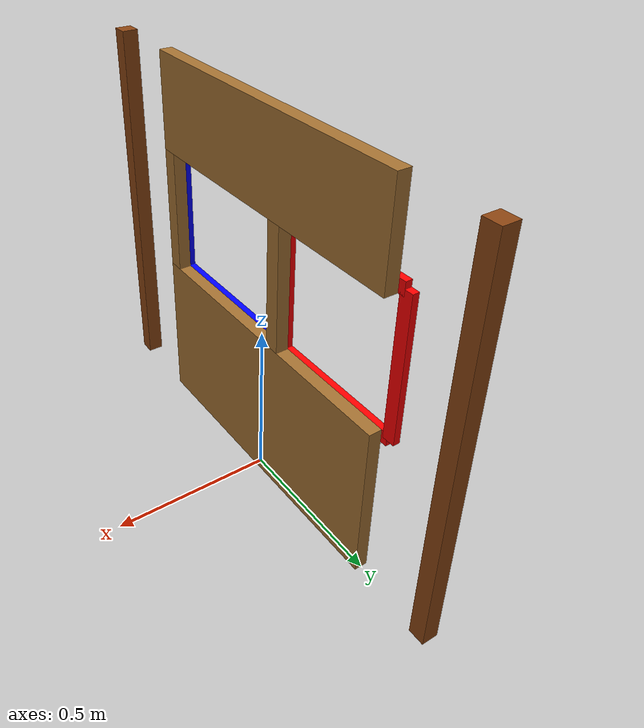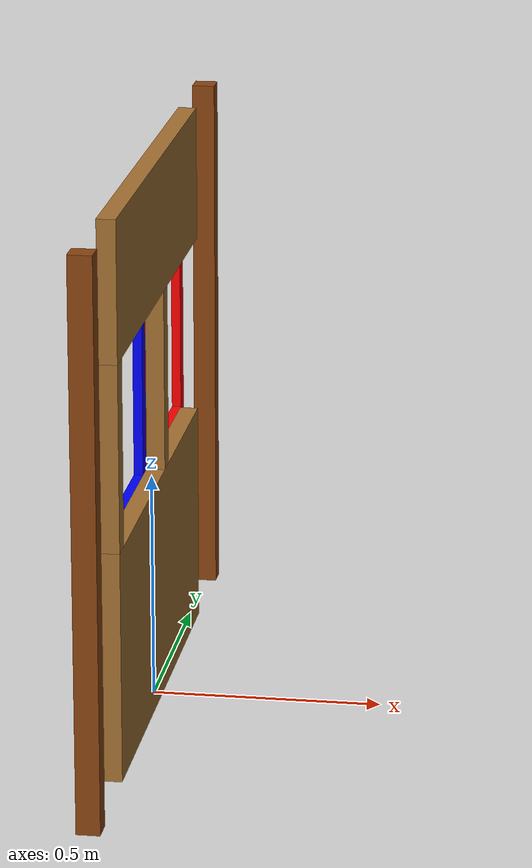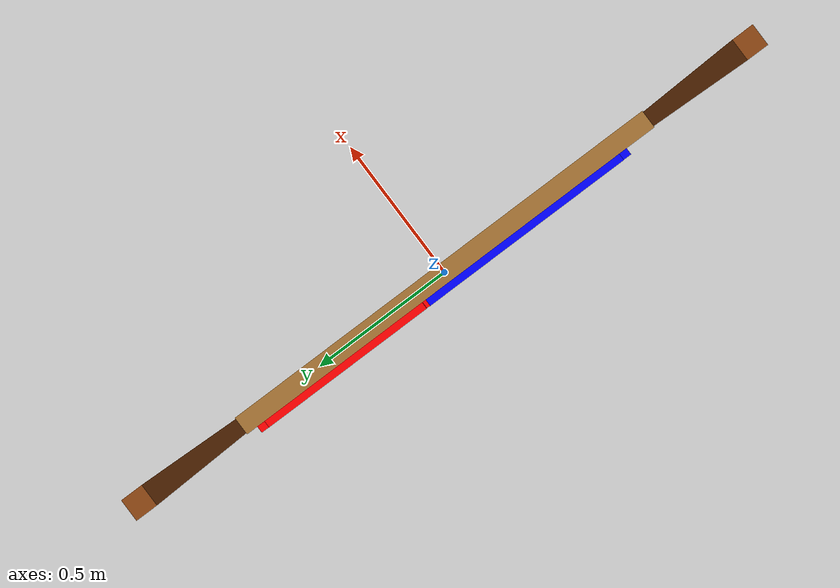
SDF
<?xml version="1.0" ?>
<sdf version="1.9">
  <model name="window_frame">
    <static>true</static>

    <!-- Left post (y = -0.75) -->
    <link name="post_left">
      <pose>0 -0.75 0.6 0 0 0</pose>
      <collision name="col"><geometry><box><size>0.05 0.05 1.2</size></box></geometry></collision>
      <visual name="vis">
        <geometry><box><size>0.05 0.05 1.2</size></box></geometry>
        <material><ambient>0.55 0.27 0.07 1</ambient><diffuse>0.55 0.27 0.07 1</diffuse></material>
      </visual>
    </link>

    <!-- Right post (y = +0.75) -->
    <link name="post_right">
      <pose>0 0.75 0.6 0 0 0</pose>
      <collision name="col"><geometry><box><size>0.05 0.05 1.2</size></box></geometry></collision>
      <visual name="vis">
        <geometry><box><size>0.05 0.05 1.2</size></box></geometry>
        <material><ambient>0.55 0.27 0.07 1</ambient><diffuse>0.55 0.27 0.07 1</diffuse></material>
      </visual>
    </link>

    <!-- Board bottom panel: full width, below windows (z=0 to 0.5) -->
    <link name="board_bottom">
      <pose>0 0 0.25 0 0 0</pose>
      <collision name="col"><geometry><box><size>0.04 1.0 0.5</size></box></geometry></collision>
      <visual name="vis">
        <geometry><box><size>0.04 1.0 0.5</size></box></geometry>
        <material><ambient>0.65 0.45 0.2 1</ambient><diffuse>0.65 0.45 0.2 1</diffuse></material>
      </visual>
    </link>

    <!-- Board top panel: full width, above windows (z=0.9 to 1.2) -->
    <link name="board_top">
      <pose>0 0 1.05 0 0 0</pose>
      <collision name="col"><geometry><box><size>0.04 1.0 0.3</size></box></geometry></collision>
      <visual name="vis">
        <geometry><box><size>0.04 1.0 0.3</size></box></geometry>
        <material><ambient>0.65 0.45 0.2 1</ambient><diffuse>0.65 0.45 0.2 1</diffuse></material>
      </visual>
    </link>

    <!-- Board left sliver: left of blue window (y=-0.5 to -0.45), window level -->
    <link name="board_left_sliver">
      <pose>0 -0.475 0.7 0 0 0</pose>
      <collision name="col"><geometry><box><size>0.04 0.05 0.4</size></box></geometry></collision>
      <visual name="vis">
        <geometry><box><size>0.04 0.05 0.4</size></box></geometry>
        <material><ambient>0.65 0.45 0.2 1</ambient><diffuse>0.65 0.45 0.2 1</diffuse></material>
      </visual>
    </link>

    <!-- Board middle sliver: between windows (y=+0.05 to +0.10) -->
    <link name="board_mid_sliver">
      <pose>0 0.075 0.7 0 0 0</pose>
      <collision name="col"><geometry><box><size>0.04 0.05 0.4</size></box></geometry></collision>
      <visual name="vis">
        <geometry><box><size>0.04 0.05 0.4</size></box></geometry>
        <material><ambient>0.65 0.45 0.2 1</ambient><diffuse>0.65 0.45 0.2 1</diffuse></material>
      </visual>
    </link>

    <!-- Blue window border (visual only, no collision) -->
    <!-- Blue window spans y=-0.45 to +0.05, z=0.5 to 0.9 -->
    <link name="blue_border_top">
      <pose>-0.03 -0.20 0.92 0 0 0</pose>
      <visual name="vis">
        <geometry><box><size>0.02 0.54 0.04</size></box></geometry>
        <material><ambient>0 0 1 1</ambient><diffuse>0 0 1 1</diffuse></material>
      </visual>
    </link>
    <link name="blue_border_bot">
      <pose>-0.03 -0.20 0.48 0 0 0</pose>
      <visual name="vis">
        <geometry><box><size>0.02 0.54 0.04</size></box></geometry>
        <material><ambient>0 0 1 1</ambient><diffuse>0 0 1 1</diffuse></material>
      </visual>
    </link>
    <link name="blue_border_left">
      <pose>-0.03 -0.475 0.70 0 0 0</pose>
      <visual name="vis">
        <geometry><box><size>0.02 0.04 0.44</size></box></geometry>
        <material><ambient>0 0 1 1</ambient><diffuse>0 0 1 1</diffuse></material>
      </visual>
    </link>
    <link name="blue_border_right">
      <pose>-0.03 0.025 0.70 0 0 0</pose>
      <visual name="vis">
        <geometry><box><size>0.02 0.04 0.44</size></box></geometry>
        <material><ambient>0 0 1 1</ambient><diffuse>0 0 1 1</diffuse></material>
      </visual>
    </link>

    <!-- Red window border (visual only, no collision) -->
    <!-- Red window spans y=+0.10 to +0.50, z=0.5 to 0.9 -->
    <link name="red_border_top">
      <pose>-0.03 0.30 0.92 0 0 0</pose>
      <visual name="vis">
        <geometry><box><size>0.02 0.44 0.04</size></box></geometry>
        <material><ambient>1 0 0 1</ambient><diffuse>1 0 0 1</diffuse></material>
      </visual>
    </link>
    <link name="red_border_bot">
      <pose>-0.03 0.30 0.48 0 0 0</pose>
      <visual name="vis">
        <geometry><box><size>0.02 0.44 0.04</size></box></geometry>
        <material><ambient>1 0 0 1</ambient><diffuse>1 0 0 1</diffuse></material>
      </visual>
    </link>
    <link name="red_border_left">
      <pose>-0.03 0.075 0.70 0 0 0</pose>
      <visual name="vis">
        <geometry><box><size>0.02 0.04 0.44</size></box></geometry>
        <material><ambient>1 0 0 1</ambient><diffuse>1 0 0 1</diffuse></material>
      </visual>
    </link>
    <link name="red_border_right">
      <pose>-0.03 0.525 0.70 0 0 0</pose>
      <visual name="vis">
        <geometry><box><size>0.02 0.04 0.44</size></box></geometry>
        <material><ambient>1 0 0 1</ambient><diffuse>1 0 0 1</diffuse></material>
      </visual>
    </link>

  </model>
</sdf>
